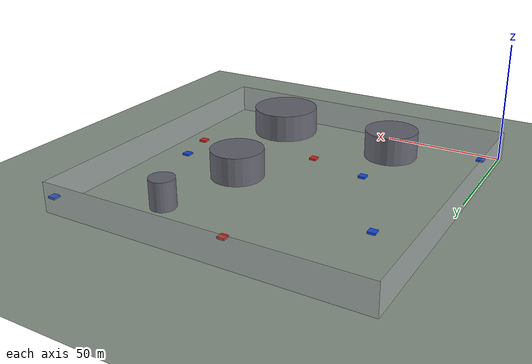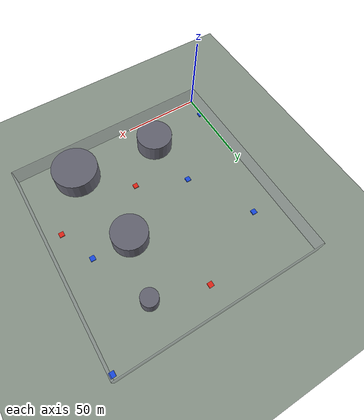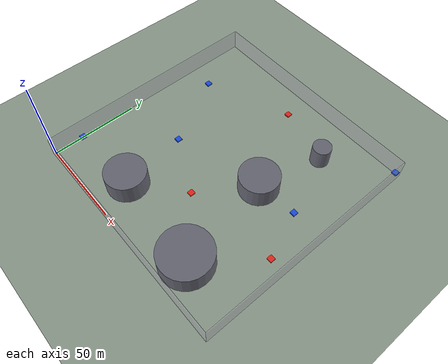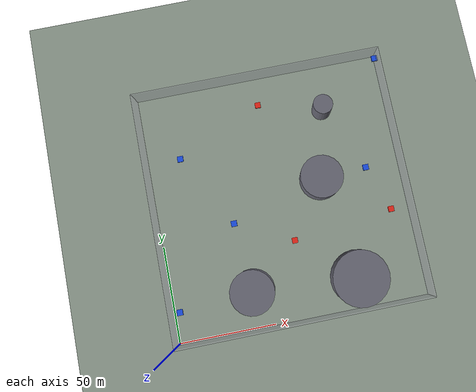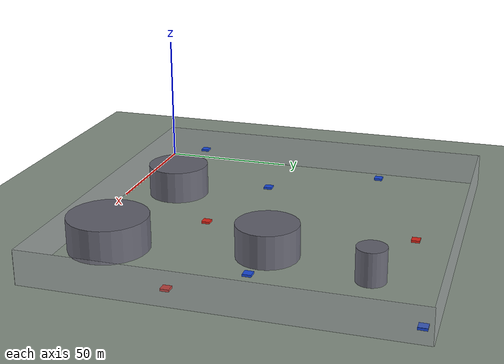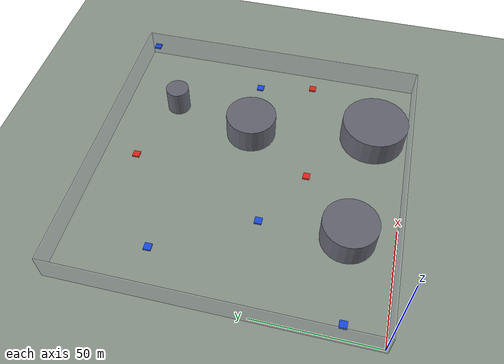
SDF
<?xml version="1.0"?>
<sdf version="1.9">
  <world name="arena">
    <physics name="default" type="ignored">
      <max_step_size>0.004</max_step_size>
      <real_time_factor>1.0</real_time_factor>
    </physics>
    <plugin filename="gz-sim-physics-system" name="gz::sim::systems::Physics"/>
    <plugin filename="gz-sim-user-commands-system" name="gz::sim::systems::UserCommands"/>
    <plugin filename="gz-sim-scene-broadcaster-system" name="gz::sim::systems::SceneBroadcaster"/>
    <gui fullscreen="0">
      <plugin filename="MinimalScene" name="3D View">
        <gz-gui>
          <title>3D View</title>
          <property type="bool" key="showTitleBar">false</property>
          <property type="string" key="state">docked</property>
        </gz-gui>
        <engine>ogre2</engine>
        <scene>scene</scene>
        <ambient_light>0.4 0.4 0.4</ambient_light>
        <background_color>0.8 0.85 0.95</background_color>
        <camera_pose>65.0 -58.5 84.5 0 0.65 1.5708</camera_pose>
      </plugin>
      <plugin filename="GzSceneManager" name="Scene Manager">
        <gz-gui>
          <property key="state" type="string">floating</property>
          <property key="width" type="double">5</property>
          <property key="height" type="double">5</property>
          <property key="showTitleBar" type="bool">false</property>
        </gz-gui>
      </plugin>
      <plugin filename="InteractiveViewControl" name="Interactive view control">
        <gz-gui>
          <property key="state" type="string">floating</property>
          <property key="width" type="double">5</property>
          <property key="height" type="double">5</property>
          <property key="showTitleBar" type="bool">false</property>
        </gz-gui>
      </plugin>
      <plugin filename="CameraTracking" name="Camera tracking">
        <gz-gui>
          <property key="state" type="string">floating</property>
          <property key="width" type="double">5</property>
          <property key="height" type="double">5</property>
          <property key="showTitleBar" type="bool">false</property>
        </gz-gui>
      </plugin>
      <plugin filename="WorldControl" name="World control">
        <gz-gui>
          <title>World control</title>
          <property type="bool" key="showTitleBar">false</property>
          <property type="bool" key="resizable">false</property>
          <property type="double" key="height">72</property>
          <property type="double" key="width">121</property>
          <property type="double" key="z">1</property>
          <property type="string" key="state">floating</property>
          <anchors target="3D View">
            <line own="left" target="left"/>
            <line own="bottom" target="bottom"/>
          </anchors>
        </gz-gui>
        <play_pause>true</play_pause>
        <step>true</step>
        <start_paused>true</start_paused>
        <use_event>true</use_event>
      </plugin>
      <plugin filename="WorldStats" name="World stats">
        <gz-gui>
          <title>World stats</title>
          <property type="bool" key="showTitleBar">false</property>
          <property type="bool" key="resizable">false</property>
          <property type="double" key="height">110</property>
          <property type="double" key="width">290</property>
          <property type="double" key="z">1</property>
          <property type="string" key="state">floating</property>
          <anchors target="3D View">
            <line own="right" target="right"/>
            <line own="bottom" target="bottom"/>
          </anchors>
        </gz-gui>
        <sim_time>true</sim_time>
        <real_time>true</real_time>
        <real_time_factor>true</real_time_factor>
        <iterations>true</iterations>
      </plugin>
      <plugin filename="EntityTree" name="Entity tree"/>
    </gui>
    <light type="directional" name="sun">
      <cast_shadows>true</cast_shadows>
      <pose>0 0 50 0 0 0</pose>
      <diffuse>0.9 0.9 0.9 1</diffuse>
      <specular>0.2 0.2 0.2 1</specular>
      <direction>-0.4 0.3 -0.9</direction>
    </light>
    <model name="ground_plane">
      <static>true</static>
      <link name="link">
        <collision name="collision">
          <geometry><plane><normal>0 0 1</normal><size>500 500</size></plane></geometry>
        </collision>
        <visual name="visual">
          <geometry><plane><normal>0 0 1</normal><size>500 500</size></plane></geometry>
          <material><ambient>0.55 0.6 0.55 1</ambient><diffuse>0.55 0.6 0.55 1</diffuse></material>
        </visual>
      </link>
    </model>
    <model name="wall_south">
      <static>true</static>
      <pose>65.000 -0.750 6.000 0 0 0</pose>
      <link name="body">
        <collision name="collision">
          <geometry><box><size>131.500 0.500 12.0</size></box></geometry>
          <surface><friction><ode><mu>0</mu><mu2>0</mu2></ode></friction></surface>
        </collision>
        <visual name="visual">
          <geometry><box><size>131.500 0.500 12.0</size></box></geometry>
          <material><ambient>0.7 0.7 0.75 0.35</ambient><diffuse>0.7 0.7 0.75 0.35</diffuse></material>
          <transparency>0.65</transparency>
        </visual>
      </link>
    </model>
    <model name="wall_north">
      <static>true</static>
      <pose>65.000 130.750 6.000 0 0 0</pose>
      <link name="body">
        <collision name="collision">
          <geometry><box><size>131.500 0.500 12.0</size></box></geometry>
          <surface><friction><ode><mu>0</mu><mu2>0</mu2></ode></friction></surface>
        </collision>
        <visual name="visual">
          <geometry><box><size>131.500 0.500 12.0</size></box></geometry>
          <material><ambient>0.7 0.7 0.75 0.35</ambient><diffuse>0.7 0.7 0.75 0.35</diffuse></material>
          <transparency>0.65</transparency>
        </visual>
      </link>
    </model>
    <model name="wall_west">
      <static>true</static>
      <pose>-0.750 65.000 6.000 0 0 0</pose>
      <link name="body">
        <collision name="collision">
          <geometry><box><size>0.500 131.500 12.0</size></box></geometry>
          <surface><friction><ode><mu>0</mu><mu2>0</mu2></ode></friction></surface>
        </collision>
        <visual name="visual">
          <geometry><box><size>0.500 131.500 12.0</size></box></geometry>
          <material><ambient>0.7 0.7 0.75 0.35</ambient><diffuse>0.7 0.7 0.75 0.35</diffuse></material>
          <transparency>0.65</transparency>
        </visual>
      </link>
    </model>
    <model name="wall_east">
      <static>true</static>
      <pose>130.750 65.000 6.000 0 0 0</pose>
      <link name="body">
        <collision name="collision">
          <geometry><box><size>0.500 131.500 12.0</size></box></geometry>
          <surface><friction><ode><mu>0</mu><mu2>0</mu2></ode></friction></surface>
        </collision>
        <visual name="visual">
          <geometry><box><size>0.500 131.500 12.0</size></box></geometry>
          <material><ambient>0.7 0.7 0.75 0.35</ambient><diffuse>0.7 0.7 0.75 0.35</diffuse></material>
          <transparency>0.65</transparency>
        </visual>
      </link>
    </model>
    <model name="obstacle_0">
      <static>true</static>
      <pose>41.979 19.097 6.000 0 0 0</pose>
      <link name="body">
        <collision name="collision">
          <geometry><cylinder><radius>11.020</radius><length>12.0</length></cylinder></geometry>
          <surface><friction><ode><mu>0</mu><mu2>0</mu2></ode></friction></surface>
        </collision>
        <visual name="visual">
          <geometry><cylinder><radius>11.370</radius><length>12.0</length></cylinder></geometry>
          <material><ambient>0.4 0.4 0.45 1</ambient><diffuse>0.4 0.4 0.45 1</diffuse></material>
        </visual>
      </link>
    </model>
    <model name="obstacle_1">
      <static>true</static>
      <pose>96.327 106.276 6.000 0 0 0</pose>
      <link name="body">
        <collision name="collision">
          <geometry><cylinder><radius>4.815</radius><length>12.0</length></cylinder></geometry>
          <surface><friction><ode><mu>0</mu><mu2>0</mu2></ode></friction></surface>
        </collision>
        <visual name="visual">
          <geometry><cylinder><radius>5.165</radius><length>12.0</length></cylinder></geometry>
          <material><ambient>0.4 0.4 0.45 1</ambient><diffuse>0.4 0.4 0.45 1</diffuse></material>
        </visual>
      </link>
    </model>
    <model name="obstacle_2">
      <static>true</static>
      <pose>87.950 69.362 6.000 0 0 0</pose>
      <link name="body">
        <collision name="collision">
          <geometry><cylinder><radius>10.716</radius><length>12.0</length></cylinder></geometry>
          <surface><friction><ode><mu>0</mu><mu2>0</mu2></ode></friction></surface>
        </collision>
        <visual name="visual">
          <geometry><cylinder><radius>11.066</radius><length>12.0</length></cylinder></geometry>
          <material><ambient>0.4 0.4 0.45 1</ambient><diffuse>0.4 0.4 0.45 1</diffuse></material>
        </visual>
      </link>
    </model>
    <model name="obstacle_3">
      <static>true</static>
      <pose>96.585 15.274 6.000 0 0 0</pose>
      <link name="body">
        <collision name="collision">
          <geometry><cylinder><radius>14.001</radius><length>12.0</length></cylinder></geometry>
          <surface><friction><ode><mu>0</mu><mu2>0</mu2></ode></friction></surface>
        </collision>
        <visual name="visual">
          <geometry><cylinder><radius>14.351</radius><length>12.0</length></cylinder></geometry>
          <material><ambient>0.4 0.4 0.45 1</ambient><diffuse>0.4 0.4 0.45 1</diffuse></material>
        </visual>
      </link>
    </model>
    <model name="blue_0">
      <pose>112.213 70.390 5.000 0 0 0</pose>
      <link name="body">
        <gravity>false</gravity>
        <inertial>
          <mass>1.0</mass>
          <inertia><ixx>0.02</ixx><iyy>0.02</iyy><izz>0.02</izz>
                   <ixy>0</ixy><ixz>0</ixz><iyz>0</iyz></inertia>
        </inertial>
        <collision name="collision">
          <geometry><box><size>0.6 0.6 0.2</size></box></geometry>
          <surface><friction><ode><mu>0</mu><mu2>0</mu2></ode></friction></surface>
        </collision>
        <visual name="visual">
          <geometry><box><size>3.0 3.0 0.8</size></box></geometry>
          <material>
            <ambient>0.1 0.3 0.9 1</ambient><diffuse>0.1 0.3 0.9 1</diffuse>
            <emissive>0.1 0.3 0.9 1</emissive>
          </material>
        </visual>
      </link>
      <plugin filename="gz-sim-velocity-control-system"
              name="gz::sim::systems::VelocityControl">
        <topic>/model/blue_0/cmd_vel</topic>
      </plugin>
      <plugin filename="gz-sim-odometry-publisher-system"
              name="gz::sim::systems::OdometryPublisher">
        <odom_topic>/model/blue_0/odometry</odom_topic>
        <odom_publish_frequency>20</odom_publish_frequency>
      </plugin>
    </model>
    <model name="blue_1">
      <pose>38.963 54.949 5.000 0 0 0</pose>
      <link name="body">
        <gravity>false</gravity>
        <inertial>
          <mass>1.0</mass>
          <inertia><ixx>0.02</ixx><iyy>0.02</iyy><izz>0.02</izz>
                   <ixy>0</ixy><ixz>0</ixz><iyz>0</iyz></inertia>
        </inertial>
        <collision name="collision">
          <geometry><box><size>0.6 0.6 0.2</size></box></geometry>
          <surface><friction><ode><mu>0</mu><mu2>0</mu2></ode></friction></surface>
        </collision>
        <visual name="visual">
          <geometry><box><size>3.0 3.0 0.8</size></box></geometry>
          <material>
            <ambient>0.1 0.3 0.9 1</ambient><diffuse>0.1 0.3 0.9 1</diffuse>
            <emissive>0.1 0.3 0.9 1</emissive>
          </material>
        </visual>
      </link>
      <plugin filename="gz-sim-velocity-control-system"
              name="gz::sim::systems::VelocityControl">
        <topic>/model/blue_1/cmd_vel</topic>
      </plugin>
      <plugin filename="gz-sim-odometry-publisher-system"
              name="gz::sim::systems::OdometryPublisher">
        <odom_topic>/model/blue_1/odometry</odom_topic>
        <odom_publish_frequency>20</odom_publish_frequency>
      </plugin>
    </model>
    <model name="blue_2">
      <pose>3.682 16.157 5.000 0 0 0</pose>
      <link name="body">
        <gravity>false</gravity>
        <inertial>
          <mass>1.0</mass>
          <inertia><ixx>0.02</ixx><iyy>0.02</iyy><izz>0.02</izz>
                   <ixy>0</ixy><ixz>0</ixz><iyz>0</iyz></inertia>
        </inertial>
        <collision name="collision">
          <geometry><box><size>0.6 0.6 0.2</size></box></geometry>
          <surface><friction><ode><mu>0</mu><mu2>0</mu2></ode></friction></surface>
        </collision>
        <visual name="visual">
          <geometry><box><size>3.0 3.0 0.8</size></box></geometry>
          <material>
            <ambient>0.1 0.3 0.9 1</ambient><diffuse>0.1 0.3 0.9 1</diffuse>
            <emissive>0.1 0.3 0.9 1</emissive>
          </material>
        </visual>
      </link>
      <plugin filename="gz-sim-velocity-control-system"
              name="gz::sim::systems::VelocityControl">
        <topic>/model/blue_2/cmd_vel</topic>
      </plugin>
      <plugin filename="gz-sim-odometry-publisher-system"
              name="gz::sim::systems::OdometryPublisher">
        <odom_topic>/model/blue_2/odometry</odom_topic>
        <odom_publish_frequency>20</odom_publish_frequency>
      </plugin>
    </model>
    <model name="blue_3">
      <pose>129.637 127.509 5.000 0 0 0</pose>
      <link name="body">
        <gravity>false</gravity>
        <inertial>
          <mass>1.0</mass>
          <inertia><ixx>0.02</ixx><iyy>0.02</iyy><izz>0.02</izz>
                   <ixy>0</ixy><ixz>0</ixz><iyz>0</iyz></inertia>
        </inertial>
        <collision name="collision">
          <geometry><box><size>0.6 0.6 0.2</size></box></geometry>
          <surface><friction><ode><mu>0</mu><mu2>0</mu2></ode></friction></surface>
        </collision>
        <visual name="visual">
          <geometry><box><size>3.0 3.0 0.8</size></box></geometry>
          <material>
            <ambient>0.1 0.3 0.9 1</ambient><diffuse>0.1 0.3 0.9 1</diffuse>
            <emissive>0.1 0.3 0.9 1</emissive>
          </material>
        </visual>
      </link>
      <plugin filename="gz-sim-velocity-control-system"
              name="gz::sim::systems::VelocityControl">
        <topic>/model/blue_3/cmd_vel</topic>
      </plugin>
      <plugin filename="gz-sim-odometry-publisher-system"
              name="gz::sim::systems::OdometryPublisher">
        <odom_topic>/model/blue_3/odometry</odom_topic>
        <odom_publish_frequency>20</odom_publish_frequency>
      </plugin>
    </model>
    <model name="blue_4">
      <pose>17.563 93.793 5.000 0 0 0</pose>
      <link name="body">
        <gravity>false</gravity>
        <inertial>
          <mass>1.0</mass>
          <inertia><ixx>0.02</ixx><iyy>0.02</iyy><izz>0.02</izz>
                   <ixy>0</ixy><ixz>0</ixz><iyz>0</iyz></inertia>
        </inertial>
        <collision name="collision">
          <geometry><box><size>0.6 0.6 0.2</size></box></geometry>
          <surface><friction><ode><mu>0</mu><mu2>0</mu2></ode></friction></surface>
        </collision>
        <visual name="visual">
          <geometry><box><size>3.0 3.0 0.8</size></box></geometry>
          <material>
            <ambient>0.1 0.3 0.9 1</ambient><diffuse>0.1 0.3 0.9 1</diffuse>
            <emissive>0.1 0.3 0.9 1</emissive>
          </material>
        </visual>
      </link>
      <plugin filename="gz-sim-velocity-control-system"
              name="gz::sim::systems::VelocityControl">
        <topic>/model/blue_4/cmd_vel</topic>
      </plugin>
      <plugin filename="gz-sim-odometry-publisher-system"
              name="gz::sim::systems::OdometryPublisher">
        <odom_topic>/model/blue_4/odometry</odom_topic>
        <odom_publish_frequency>20</odom_publish_frequency>
      </plugin>
    </model>
    <model name="red_0">
      <pose>68.296 40.331 1.000 0 0 0</pose>
      <link name="body">
        <gravity>false</gravity>
        <inertial>
          <mass>1.0</mass>
          <inertia><ixx>0.02</ixx><iyy>0.02</iyy><izz>0.02</izz>
                   <ixy>0</ixy><ixz>0</ixz><iyz>0</iyz></inertia>
        </inertial>
        <collision name="collision">
          <geometry><box><size>0.6 0.6 0.2</size></box></geometry>
          <surface><friction><ode><mu>0</mu><mu2>0</mu2></ode></friction></surface>
        </collision>
        <visual name="visual">
          <geometry><box><size>3.0 3.0 0.8</size></box></geometry>
          <material>
            <ambient>0.9 0.15 0.1 1</ambient><diffuse>0.9 0.15 0.1 1</diffuse>
            <emissive>0.9 0.15 0.1 1</emissive>
          </material>
        </visual>
      </link>
      <plugin filename="gz-sim-velocity-control-system"
              name="gz::sim::systems::VelocityControl">
        <topic>/model/red_0/cmd_vel</topic>
      </plugin>
      <plugin filename="gz-sim-odometry-publisher-system"
              name="gz::sim::systems::OdometryPublisher">
        <odom_topic>/model/red_0/odometry</odom_topic>
        <odom_publish_frequency>20</odom_publish_frequency>
      </plugin>
    </model>
    <model name="red_1">
      <pose>63.159 115.633 1.000 0 0 0</pose>
      <link name="body">
        <gravity>false</gravity>
        <inertial>
          <mass>1.0</mass>
          <inertia><ixx>0.02</ixx><iyy>0.02</iyy><izz>0.02</izz>
                   <ixy>0</ixy><ixz>0</ixz><iyz>0</iyz></inertia>
        </inertial>
        <collision name="collision">
          <geometry><box><size>0.6 0.6 0.2</size></box></geometry>
          <surface><friction><ode><mu>0</mu><mu2>0</mu2></ode></friction></surface>
        </collision>
        <visual name="visual">
          <geometry><box><size>3.0 3.0 0.8</size></box></geometry>
          <material>
            <ambient>0.9 0.15 0.1 1</ambient><diffuse>0.9 0.15 0.1 1</diffuse>
            <emissive>0.9 0.15 0.1 1</emissive>
          </material>
        </visual>
      </link>
      <plugin filename="gz-sim-velocity-control-system"
              name="gz::sim::systems::VelocityControl">
        <topic>/model/red_1/cmd_vel</topic>
      </plugin>
      <plugin filename="gz-sim-odometry-publisher-system"
              name="gz::sim::systems::OdometryPublisher">
        <odom_topic>/model/red_1/odometry</odom_topic>
        <odom_publish_frequency>20</odom_publish_frequency>
      </plugin>
    </model>
    <model name="red_2">
      <pose>121.426 46.513 1.000 0 0 0</pose>
      <link name="body">
        <gravity>false</gravity>
        <inertial>
          <mass>1.0</mass>
          <inertia><ixx>0.02</ixx><iyy>0.02</iyy><izz>0.02</izz>
                   <ixy>0</ixy><ixz>0</ixz><iyz>0</iyz></inertia>
        </inertial>
        <collision name="collision">
          <geometry><box><size>0.6 0.6 0.2</size></box></geometry>
          <surface><friction><ode><mu>0</mu><mu2>0</mu2></ode></friction></surface>
        </collision>
        <visual name="visual">
          <geometry><box><size>3.0 3.0 0.8</size></box></geometry>
          <material>
            <ambient>0.9 0.15 0.1 1</ambient><diffuse>0.9 0.15 0.1 1</diffuse>
            <emissive>0.9 0.15 0.1 1</emissive>
          </material>
        </visual>
      </link>
      <plugin filename="gz-sim-velocity-control-system"
              name="gz::sim::systems::VelocityControl">
        <topic>/model/red_2/cmd_vel</topic>
      </plugin>
      <plugin filename="gz-sim-odometry-publisher-system"
              name="gz::sim::systems::OdometryPublisher">
        <odom_topic>/model/red_2/odometry</odom_topic>
        <odom_publish_frequency>20</odom_publish_frequency>
      </plugin>
    </model>
  </world>
</sdf>
